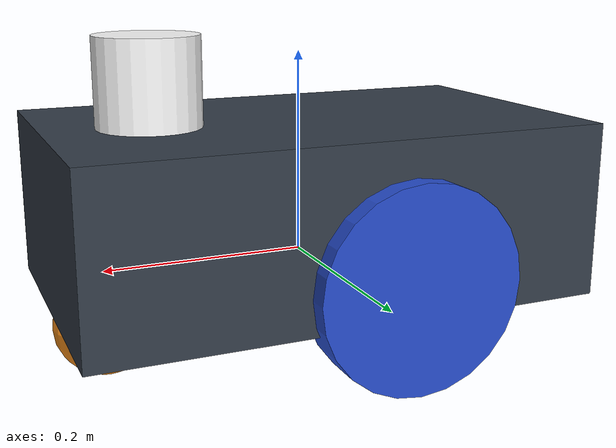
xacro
<?xml version="1.0" ?>

<robot name="m2wr"
    xmlns:xacro="https://www.ros.org/wiki/xacro">

    <xacro:include filename="$(find robot)/urdf/materials.xacro" />
    <xacro:include filename="$(find robot)/urdf/show_gazebo.xacro" />
    <xacro:include filename="$(find robot)/urdf/macro.xacro" />

    <link name="link_chassis">
        <!-- pose and inertial -->
        <pose>0 0 0.1 0 0 0</pose>

        <inertial>
            <mass value="30"/>
            <origin rpy="0 0 0" xyz="0 0 0.1"/>
            <inertia ixx="0.0395416666667" ixy="0" ixz="0" iyy="0.106208333333" iyz="0" izz="0.106208333333"/>
        </inertial>

        <collision name="collision_chassis">
            <geometry>
                <box size="0.5 0.3 0.17"/>
            </geometry>
        </collision>

        <visual>
            <origin rpy="0 0 0" xyz="0 0 0.05"/>
            <geometry>
                <box size="0.5 0.3 0.17"/>
            </geometry>
            <material name="blue"/>
        </visual>

        <!-- caster front -->
        <collision name="caster_front_collision">
            <origin rpy=" 0 0 0" xyz="0.35 0 -0.05"/>
            <geometry>
                <sphere radius="0.05"/>
            </geometry>
            <surface>
                <friction>
                    <ode>
                        <mu>0</mu>
                        <mu2>0</mu2>
                        <slip1>1.0</slip1>
                        <slip2>1.0</slip2>
                    </ode>
                </friction>
            </surface>
        </collision>
        <visual name="caster_front_visual">
            <origin rpy=" 0 0 0" xyz="0.2 0 -0.05"/>
            <geometry>
                <sphere radius="0.05"/>
            </geometry>
        </visual>
    </link>

    <!-- Create wheel right -->

    <xacro:link_wheel name="link_right_wheel" />
    <xacro:joint_wheel name="joint_right_wheel" child="link_right_wheel" origin_xyz="-0.05 0.15 0" />

    <!-- Left Wheel link -->

    <xacro:link_wheel name="link_left_wheel" />
    <xacro:joint_wheel name="joint_left_wheel" child="link_left_wheel" origin_xyz="-0.05 -0.15 0" />

    <link name="sensor_laser">
        <inertial>
            <origin xyz="0 0 0" rpy="0 0 0" />
            <mass value="1" />
            <xacro:cylinder_inertia mass="1" r="0.05" l="0.1" />
        </inertial>

        <visual>
            <origin xyz="0 0 0" rpy="0 0 0" />
            <geometry>
                <cylinder radius="0.05" length="0.1"/>
            </geometry>
            <material name="white" />
        </visual>

        <collision>
            <origin xyz="0 0 0" rpy="0 0 0"/>
            <geometry>
                <cylinder radius="0.05" length="0.1"/>
            </geometry>
        </collision>
    </link>

    <joint name="joint_sensor_laser" type="fixed">
        <origin xyz="0.15 0 0.17" rpy="0 0 0"/>
        <parent link="link_chassis"/>
        <child link="sensor_laser"/>
    </joint>

</robot>

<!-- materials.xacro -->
<robot name="m2wr"
    xmlns:xacro="https://www.ros.org/wiki/xacro">
    <material name="black">
        <color rgba="0.0 0.0 0.0 1.0"/>
    </material>
    <material name="blue">
        <color rgba="0.203125 0.23828125 0.28515625 1.0"/>
    </material>
    <material name="green">
        <color rgba="0.0 0.8 0.0 1.0"/>
    </material>
    <material name="grey">
        <color rgba="0.2 0.2 0.2 1.0"/>
    </material>
    <material name="orange">
        <color rgba="1.0 0.423529411765 0.0392156862745 1.0"/>
    </material>
    <material name="brown">
        <color rgba="0.870588235294 0.811764705882 0.764705882353 1.0"/>
    </material>
    <material name="red">
        <color rgba="0.80078125 0.12890625 0.1328125 1.0"/>
    </material>
    <material name="white">
        <color rgba="1.0 1.0 1.0 1.0"/>
    </material>
</robot>

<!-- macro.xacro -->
<!--
  we will use macros, which are like functions, to reduce the remaining code in m2wr.xacro file.
-->
<robot xmlns:xacro="http://www.ros.org/wiki/xacro">
    <xacro:macro name="link_wheel" params="name">
        <link name="${name}">
            <inertial>
                <mass value="0.2"/>
                <origin rpy="0 1.5707 1.5707" xyz="0 0 0"/>
                <inertia ixx="0.000526666666667" ixy="0" ixz="0" iyy="0.000526666666667" iyz="0" izz="0.001"/>
            </inertial>
            <collision name="link_right_wheel_collision">
                <origin rpy="0 1.5707 1.5707" xyz="0 0 0"/>
                <geometry>
                    <cylinder length="0.04" radius="0.1"/>
                </geometry>
            </collision>
            <visual name="${name}_visual">
                <origin rpy="0 1.5707 1.5707" xyz="0 0 0"/>
                <geometry>
                    <cylinder length="0.04" radius="0.1"/>
                </geometry>
            </visual>
        </link>
    </xacro:macro>

    <!--
      The second macro accepts three parameters name, child and origin_xyz and it creates a joint link.
    -->
    <xacro:macro name="joint_wheel" params="name child origin_xyz">
        <joint name="${name}" type="continuous">
            <origin rpy="0 0 0" xyz="${origin_xyz}"/>
            <child link="${child}"/>
            <parent link="link_chassis"/>
            <axis rpy="0 0 0" xyz="0 1 0"/>
            <limit effort="10000" velocity="1000"/>
            <joint_properties damping="1.0" friction="1.0"/>
        </joint>
    </xacro:macro>

    <!--
      new macro for controlling the moment of inertia of the sensor cilinder
    -->
    <xacro:macro name="cylinder_inertia" params="mass r l">
        <inertia ixx="${mass*(3*r*r+l*l)/12}" ixy = "0" ixz = "0" iyy="${mass*(3*r*r+l*l)/12}" iyz = "0" izz="${mass*(r*r)/2}" />
    </xacro:macro>

</robot>
